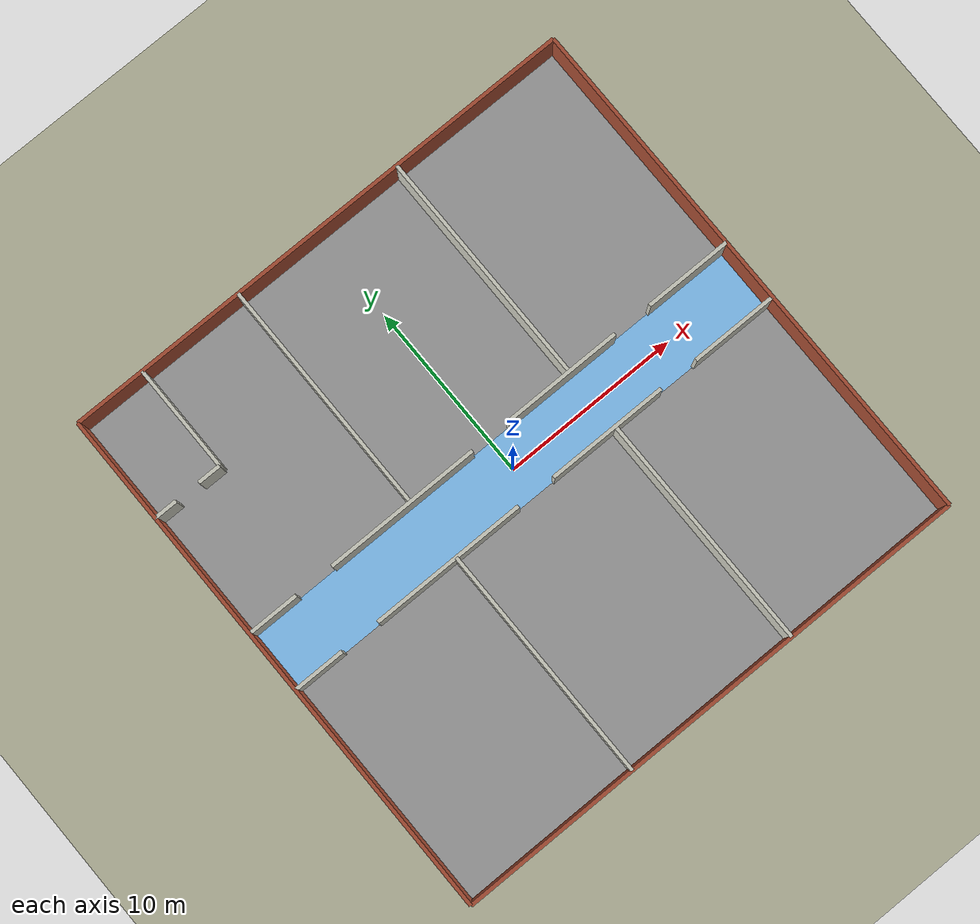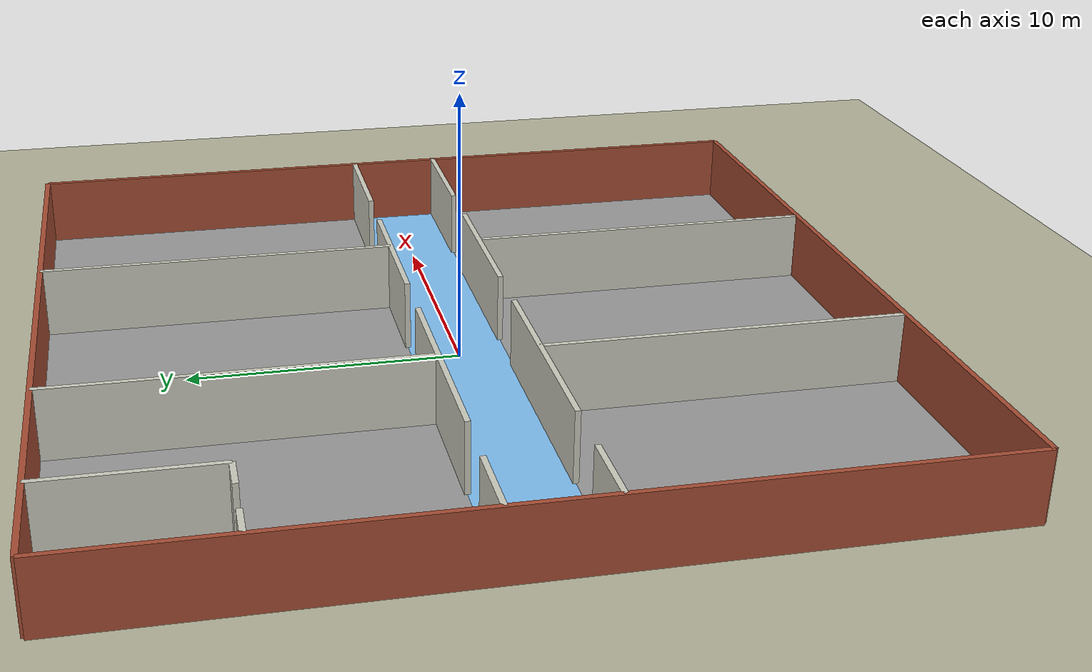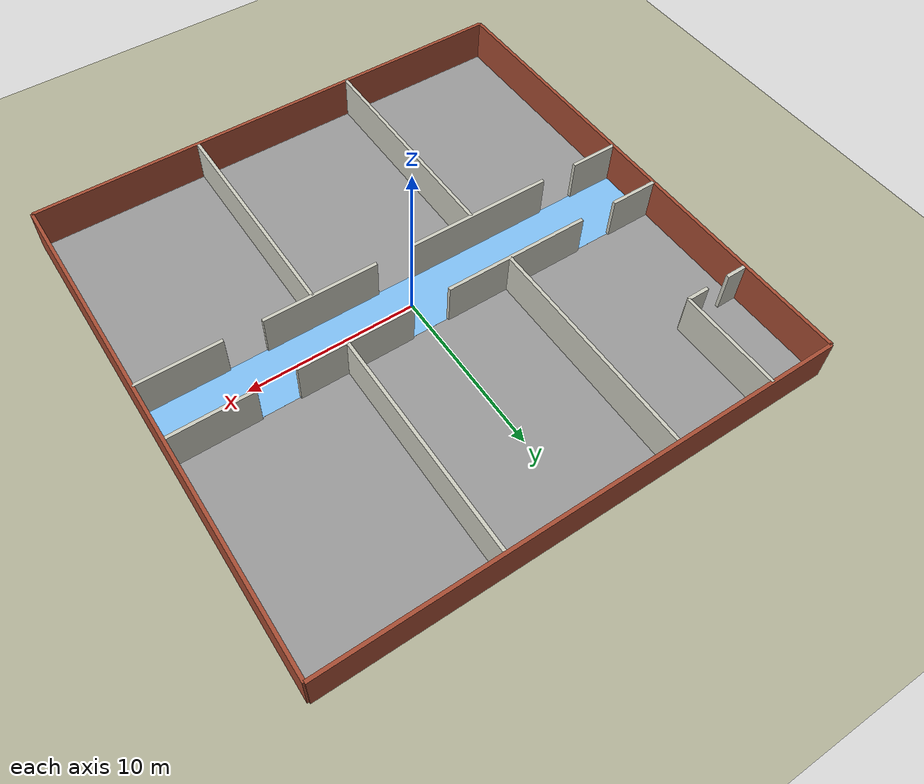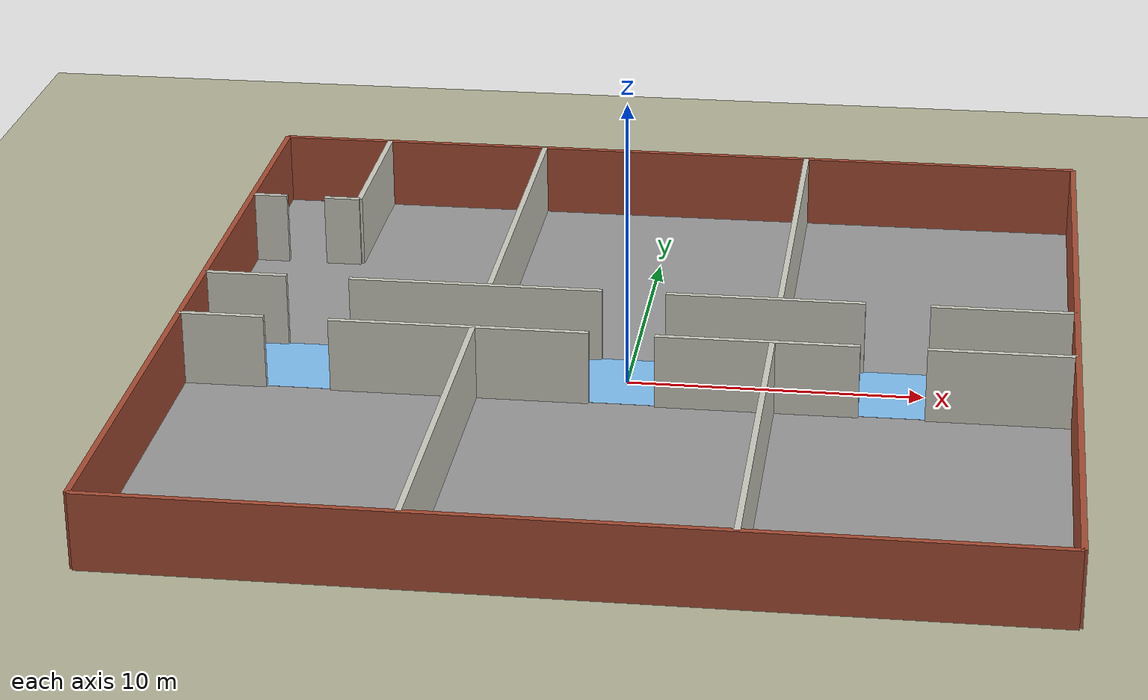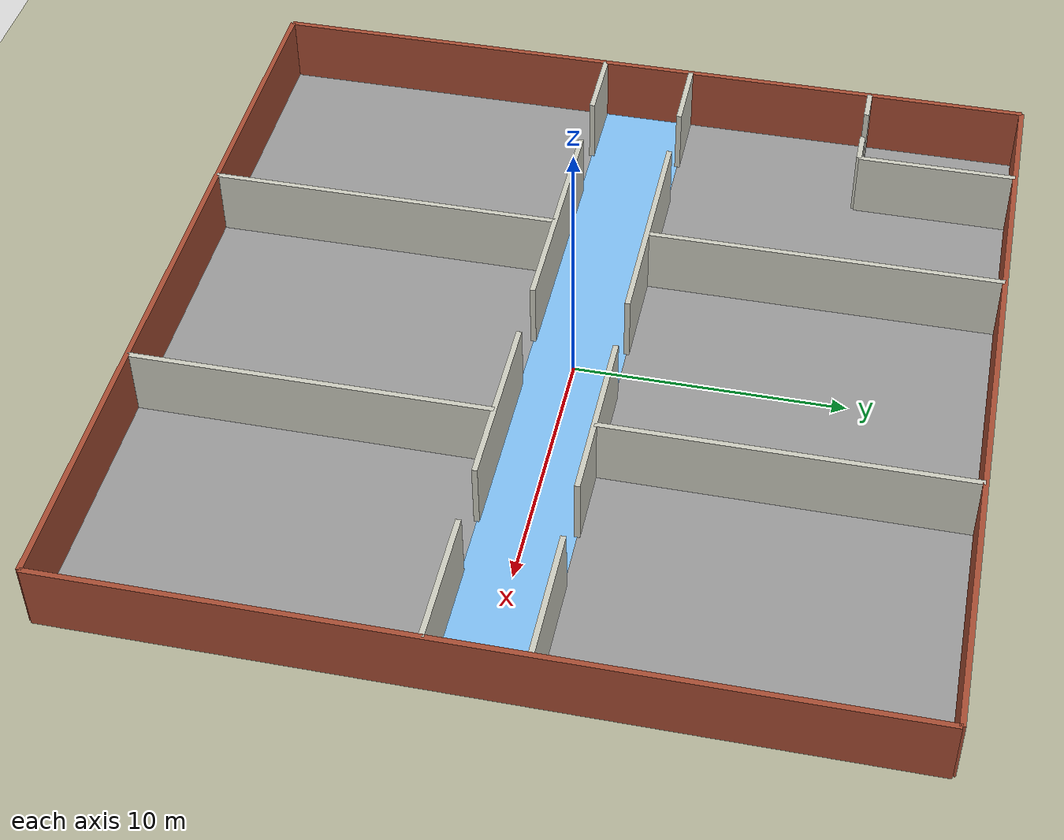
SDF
<sdf version="1.6">
 <world name="smart_building">
  <model name="ground_plane">
   <static>true</static>
   <link name="link">
    <collision name="collision">
     <geometry><plane><normal>0 0 1</normal><size>100 100</size></plane></geometry>
     <surface><friction><ode><mu>1.0</mu><mu2>1.0</mu2></ode></friction></surface>
    </collision>
    <visual name="visual">
     <geometry><plane><normal>0 0 1</normal><size>100 100</size></plane></geometry>
     <material>
      <script><uri>file://media/materials/scripts/gazebo.material</uri><name>Gazebo/Residential</name></script>
     </material>
    </visual>
   </link>
  </model>
  <model name="floor">
   <static>true</static>
   <link name="link_0">
    <pose>0.0000 0.0000 0.0100 0.0000 0.0000 0.0000</pose>
    <visual name="link_0_visual">
     <geometry><box><size>30.0000 30.0000 0.0200</size></box></geometry>
     <material>
      <script><uri>file://media/materials/scripts/gazebo.material</uri><name>Gazebo/Grey</name></script>
     </material>
    </visual>
   </link>
   <link name="link_1">
    <pose>0.0000 0.0000 0.0200 0.0000 0.0000 0.0000</pose>
    <visual name="link_1_visual">
     <geometry><box><size>30.0000 3.5000 0.0050</size></box></geometry>
     <material>
      <script><uri>file://media/materials/scripts/gazebo.material</uri><name>Gazebo/SkyBlue</name></script>
     </material>
    </visual>
   </link>
  </model>
  <model name="wall_north">
   <static>true</static>
   <link name="link_0">
    <pose>0.0000 15.0000 1.3000 0.0000 0.0000 0.0000</pose>
    <collision name="link_0_collision">
     <geometry><box><size>30.0000 0.2000 2.6000</size></box></geometry>
    </collision>
    <visual name="link_0_visual">
     <geometry><box><size>30.0000 0.2000 2.6000</size></box></geometry>
     <material>
      <script><uri>file://media/materials/scripts/gazebo.material</uri><name>Gazebo/Bricks</name></script>
     </material>
    </visual>
   </link>
  </model>
  <model name="wall_south">
   <static>true</static>
   <link name="link_0">
    <pose>0.0000 -15.0000 1.3000 0.0000 0.0000 0.0000</pose>
    <collision name="link_0_collision">
     <geometry><box><size>30.0000 0.2000 2.6000</size></box></geometry>
    </collision>
    <visual name="link_0_visual">
     <geometry><box><size>30.0000 0.2000 2.6000</size></box></geometry>
     <material>
      <script><uri>file://media/materials/scripts/gazebo.material</uri><name>Gazebo/Bricks</name></script>
     </material>
    </visual>
   </link>
  </model>
  <model name="wall_west">
   <static>true</static>
   <link name="link_0">
    <pose>-15.0000 0.0000 1.3000 0.0000 0.0000 0.0000</pose>
    <collision name="link_0_collision">
     <geometry><box><size>0.2000 30.0000 2.6000</size></box></geometry>
    </collision>
    <visual name="link_0_visual">
     <geometry><box><size>0.2000 30.0000 2.6000</size></box></geometry>
     <material>
      <script><uri>file://media/materials/scripts/gazebo.material</uri><name>Gazebo/Bricks</name></script>
     </material>
    </visual>
   </link>
  </model>
  <model name="wall_east">
   <static>true</static>
   <link name="link_0">
    <pose>15.0000 0.0000 1.3000 0.0000 0.0000 0.0000</pose>
    <collision name="link_0_collision">
     <geometry><box><size>0.2000 30.0000 2.6000</size></box></geometry>
    </collision>
    <visual name="link_0_visual">
     <geometry><box><size>0.2000 30.0000 2.6000</size></box></geometry>
     <material>
      <script><uri>file://media/materials/scripts/gazebo.material</uri><name>Gazebo/Bricks</name></script>
     </material>
    </visual>
   </link>
  </model>
  <model name="corridor_wall_north">
   <static>true</static>
   <link name="link_0">
    <pose>-13.5500 1.7500 1.3000 0.0000 0.0000 0.0000</pose>
    <collision name="link_0_collision">
     <geometry><box><size>2.9000 0.2000 2.6000</size></box></geometry>
    </collision>
    <visual name="link_0_visual">
     <geometry><box><size>2.9000 0.2000 2.6000</size></box></geometry>
     <material>
      <script><uri>file://media/materials/scripts/gazebo.material</uri><name>Gazebo/PaintedWall</name></script>
     </material>
    </visual>
   </link>
   <link name="link_1">
    <pose>-5.5000 1.7500 1.3000 0.0000 0.0000 0.0000</pose>
    <collision name="link_1_collision">
     <geometry><box><size>8.8000 0.2000 2.6000</size></box></geometry>
    </collision>
    <visual name="link_1_visual">
     <geometry><box><size>8.8000 0.2000 2.6000</size></box></geometry>
     <material>
      <script><uri>file://media/materials/scripts/gazebo.material</uri><name>Gazebo/PaintedWall</name></script>
     </material>
    </visual>
   </link>
   <link name="link_2">
    <pose>4.5000 1.7500 1.3000 0.0000 0.0000 0.0000</pose>
    <collision name="link_2_collision">
     <geometry><box><size>6.8000 0.2000 2.6000</size></box></geometry>
    </collision>
    <visual name="link_2_visual">
     <geometry><box><size>6.8000 0.2000 2.6000</size></box></geometry>
     <material>
      <script><uri>file://media/materials/scripts/gazebo.material</uri><name>Gazebo/PaintedWall</name></script>
     </material>
    </visual>
   </link>
   <link name="link_3">
    <pose>12.5500 1.7500 1.3000 0.0000 0.0000 0.0000</pose>
    <collision name="link_3_collision">
     <geometry><box><size>4.9000 0.2000 2.6000</size></box></geometry>
    </collision>
    <visual name="link_3_visual">
     <geometry><box><size>4.9000 0.2000 2.6000</size></box></geometry>
     <material>
      <script><uri>file://media/materials/scripts/gazebo.material</uri><name>Gazebo/PaintedWall</name></script>
     </material>
    </visual>
   </link>
  </model>
  <model name="corridor_wall_south">
   <static>true</static>
   <link name="link_0">
    <pose>-13.5500 -1.7500 1.3000 0.0000 0.0000 0.0000</pose>
    <collision name="link_0_collision">
     <geometry><box><size>2.9000 0.2000 2.6000</size></box></geometry>
    </collision>
    <visual name="link_0_visual">
     <geometry><box><size>2.9000 0.2000 2.6000</size></box></geometry>
     <material>
      <script><uri>file://media/materials/scripts/gazebo.material</uri><name>Gazebo/PaintedWall</name></script>
     </material>
    </visual>
   </link>
   <link name="link_1">
    <pose>-5.5000 -1.7500 1.3000 0.0000 0.0000 0.0000</pose>
    <collision name="link_1_collision">
     <geometry><box><size>8.8000 0.2000 2.6000</size></box></geometry>
    </collision>
    <visual name="link_1_visual">
     <geometry><box><size>8.8000 0.2000 2.6000</size></box></geometry>
     <material>
      <script><uri>file://media/materials/scripts/gazebo.material</uri><name>Gazebo/PaintedWall</name></script>
     </material>
    </visual>
   </link>
   <link name="link_2">
    <pose>4.5000 -1.7500 1.3000 0.0000 0.0000 0.0000</pose>
    <collision name="link_2_collision">
     <geometry><box><size>6.8000 0.2000 2.6000</size></box></geometry>
    </collision>
    <visual name="link_2_visual">
     <geometry><box><size>6.8000 0.2000 2.6000</size></box></geometry>
     <material>
      <script><uri>file://media/materials/scripts/gazebo.material</uri><name>Gazebo/PaintedWall</name></script>
     </material>
    </visual>
   </link>
   <link name="link_3">
    <pose>12.5500 -1.7500 1.3000 0.0000 0.0000 0.0000</pose>
    <collision name="link_3_collision">
     <geometry><box><size>4.9000 0.2000 2.6000</size></box></geometry>
    </collision>
    <visual name="link_3_visual">
     <geometry><box><size>4.9000 0.2000 2.6000</size></box></geometry>
     <material>
      <script><uri>file://media/materials/scripts/gazebo.material</uri><name>Gazebo/PaintedWall</name></script>
     </material>
    </visual>
   </link>
  </model>
  <model name="divider_nw">
   <static>true</static>
   <link name="link_0">
    <pose>-5.0000 8.3750 1.3000 0.0000 0.0000 0.0000</pose>
    <collision name="link_0_collision">
     <geometry><box><size>0.2000 13.2500 2.6000</size></box></geometry>
    </collision>
    <visual name="link_0_visual">
     <geometry><box><size>0.2000 13.2500 2.6000</size></box></geometry>
     <material>
      <script><uri>file://media/materials/scripts/gazebo.material</uri><name>Gazebo/PaintedWall</name></script>
     </material>
    </visual>
   </link>
  </model>
  <model name="divider_ne">
   <static>true</static>
   <link name="link_0">
    <pose>5.0000 8.3750 1.3000 0.0000 0.0000 0.0000</pose>
    <collision name="link_0_collision">
     <geometry><box><size>0.2000 13.2500 2.6000</size></box></geometry>
    </collision>
    <visual name="link_0_visual">
     <geometry><box><size>0.2000 13.2500 2.6000</size></box></geometry>
     <material>
      <script><uri>file://media/materials/scripts/gazebo.material</uri><name>Gazebo/PaintedWall</name></script>
     </material>
    </visual>
   </link>
  </model>
  <model name="divider_sw">
   <static>true</static>
   <link name="link_0">
    <pose>-5.0000 -8.3750 1.3000 0.0000 0.0000 0.0000</pose>
    <collision name="link_0_collision">
     <geometry><box><size>0.2000 13.2500 2.6000</size></box></geometry>
    </collision>
    <visual name="link_0_visual">
     <geometry><box><size>0.2000 13.2500 2.6000</size></box></geometry>
     <material>
      <script><uri>file://media/materials/scripts/gazebo.material</uri><name>Gazebo/PaintedWall</name></script>
     </material>
    </visual>
   </link>
  </model>
  <model name="divider_se">
   <static>true</static>
   <link name="link_0">
    <pose>5.0000 -8.3750 1.3000 0.0000 0.0000 0.0000</pose>
    <collision name="link_0_collision">
     <geometry><box><size>0.2000 13.2500 2.6000</size></box></geometry>
    </collision>
    <visual name="link_0_visual">
     <geometry><box><size>0.2000 13.2500 2.6000</size></box></geometry>
     <material>
      <script><uri>file://media/materials/scripts/gazebo.material</uri><name>Gazebo/PaintedWall</name></script>
     </material>
    </visual>
   </link>
  </model>
  <model name="server_wall">
   <static>true</static>
   <link name="link_0">
    <pose>-14.3500 9.0000 1.3000 0.0000 0.0000 0.0000</pose>
    <collision name="link_0_collision">
     <geometry><box><size>1.3000 0.2000 2.6000</size></box></geometry>
    </collision>
    <visual name="link_0_visual">
     <geometry><box><size>1.3000 0.2000 2.6000</size></box></geometry>
     <material>
      <script><uri>file://media/materials/scripts/gazebo.material</uri><name>Gazebo/PaintedWall</name></script>
     </material>
    </visual>
   </link>
   <link name="link_1">
    <pose>-11.6500 9.0000 1.3000 0.0000 0.0000 0.0000</pose>
    <collision name="link_1_collision">
     <geometry><box><size>1.3000 0.2000 2.6000</size></box></geometry>
    </collision>
    <visual name="link_1_visual">
     <geometry><box><size>1.3000 0.2000 2.6000</size></box></geometry>
     <material>
      <script><uri>file://media/materials/scripts/gazebo.material</uri><name>Gazebo/PaintedWall</name></script>
     </material>
    </visual>
   </link>
  </model>
  <model name="server_wall_side">
   <static>true</static>
   <link name="link_0">
    <pose>-11.0000 12.0000 1.3000 0.0000 0.0000 0.0000</pose>
    <collision name="link_0_collision">
     <geometry><box><size>0.2000 6.0000 2.6000</size></box></geometry>
    </collision>
    <visual name="link_0_visual">
     <geometry><box><size>0.2000 6.0000 2.6000</size></box></geometry>
     <material>
      <script><uri>file://media/materials/scripts/gazebo.material</uri><name>Gazebo/PaintedWall</name></script>
     </material>
    </visual>
   </link>
  </model>
 </world>
</sdf>
